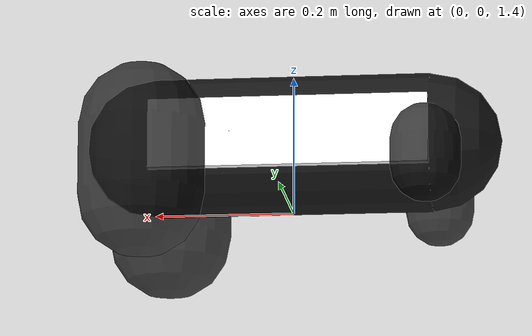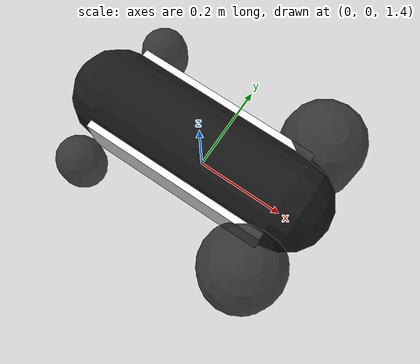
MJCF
<mujoco>
    <visual>
        <headlight ambient="1 1 1" diffuse="1 1 1" specular="0.1 0.1 0.1"/>
        <map fogstart="3" fogend="5" force="0.1" zfar="10"/>
        <rgba haze="0.6 0.8 0.9 1" fog="0.6 0.8 0.9 1"/>
        <quality shadowsize="2048"/>
    </visual>

    <worldbody>
        <light diffuse="1 1 1" pos="0 0 3" dir="0 -1 0"/> <!-- Bright white light -->
        <geom type="plane" size="5 5 0.1" rgba="0 0 1 .5"/> <!-- Representing surface -->

        <body name="submarine" pos="0 0 1.5">
            <joint type="free"/>
            <!-- No longer a marine life, Gorilla-like creature will be created -->
            <geom type="capsule" fromto="0.2 0 0 -0.2 0 0" size="0.1" rgba="0.1 0.1 0.1 1"/>
            <geom type="box" size="0.2 0.1 0.05" rgba="1 1 1 1"/>

            <!-- Limbs -->
            <body pos="0.2 0.15 -0.05">
                <joint name="f_l_limb_joint" type="hinge" axis="0 1 0"/>
                <geom type="capsule" size="0.09 0.05" rgba="0.1 0.1 0.1 0.8"/>
            </body>
            <body pos="0.2 -0.15 -0.05">
                <joint name="f_r_limb_joint" type="hinge" axis="0 1 0"/>
                <geom type="capsule" size="0.09 0.05" rgba="0.1 0.1 0.1 0.8"/>
            </body>
            <body pos="-0.2 0.15 -0.05">
                <joint name="r_l_limb_joint" type="hinge" axis="0 1 0"/>
                <geom type="capsule" size="0.05 0.02" rgba="0.1 0.1 0.1 0.8"/>
            </body>
            <body pos="-0.2 -0.15 -0.05">
                <joint name="r_r_limb_joint" type="hinge" axis="0 1 0"/>
                <geom type="capsule" size="0.05 0.02" rgba="0.1 0.1 0.1 0.8"/>
            </body>
        </body>
    </worldbody>

    <actuator>
        <motor joint="f_l_limb_joint" name="motor_f_l" />
        <motor joint="f_r_limb_joint" name="motor_f_r" />
        <motor joint="r_l_limb_joint" name="motor_r_l" />
        <motor joint="r_r_limb_joint" name="motor_r_r" />
    </actuator>
</mujoco>
